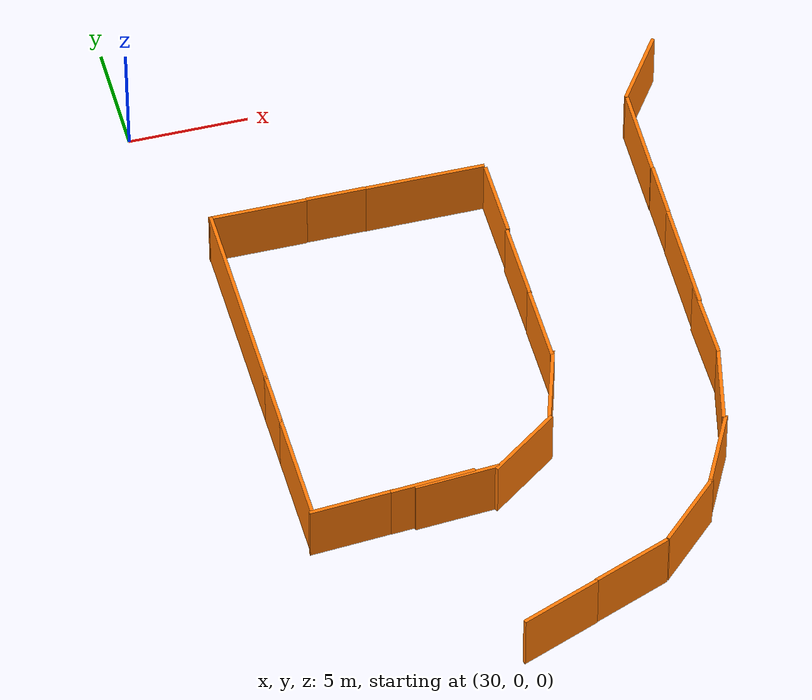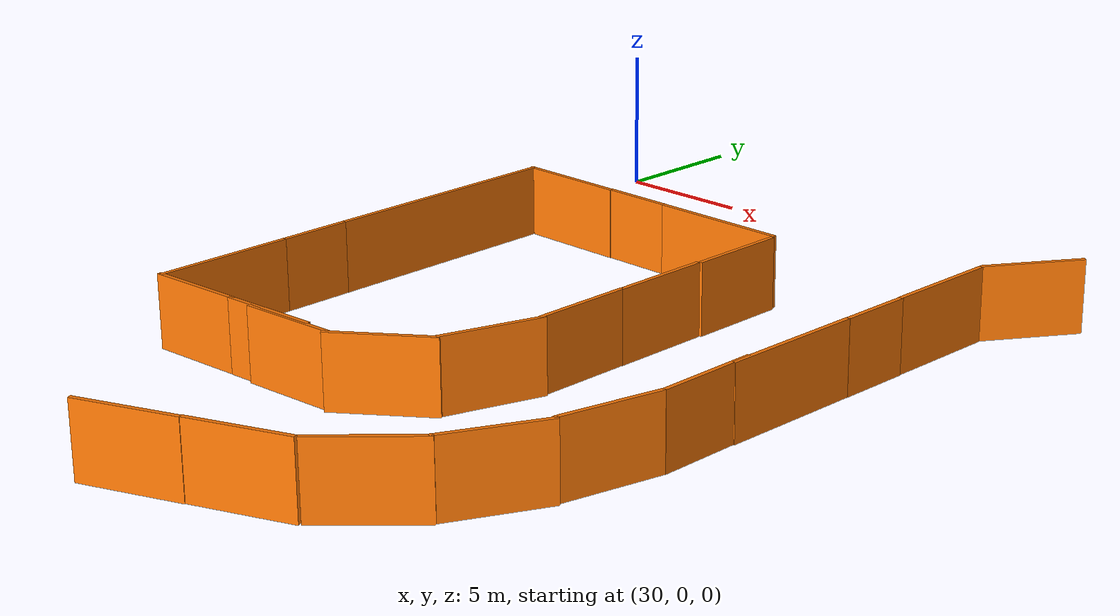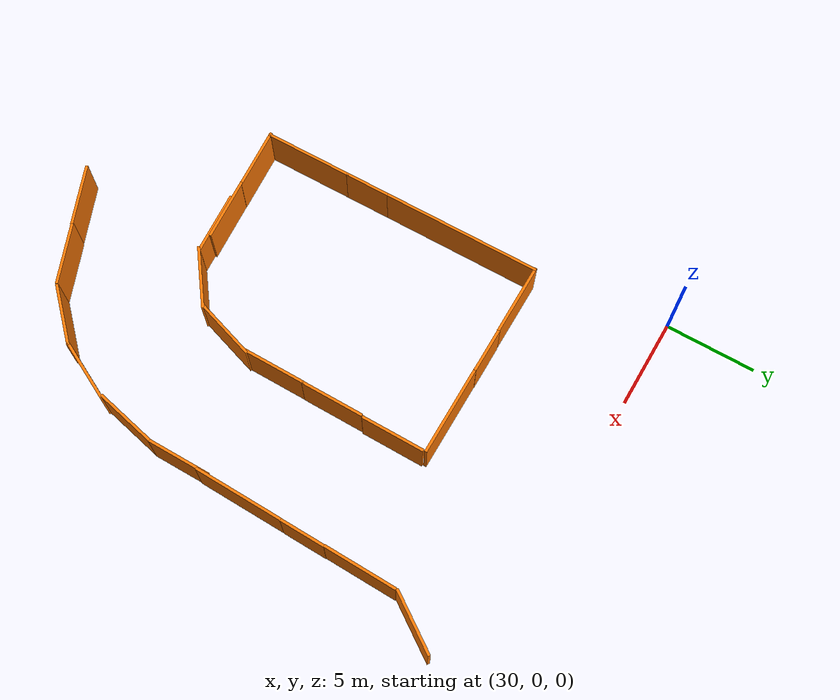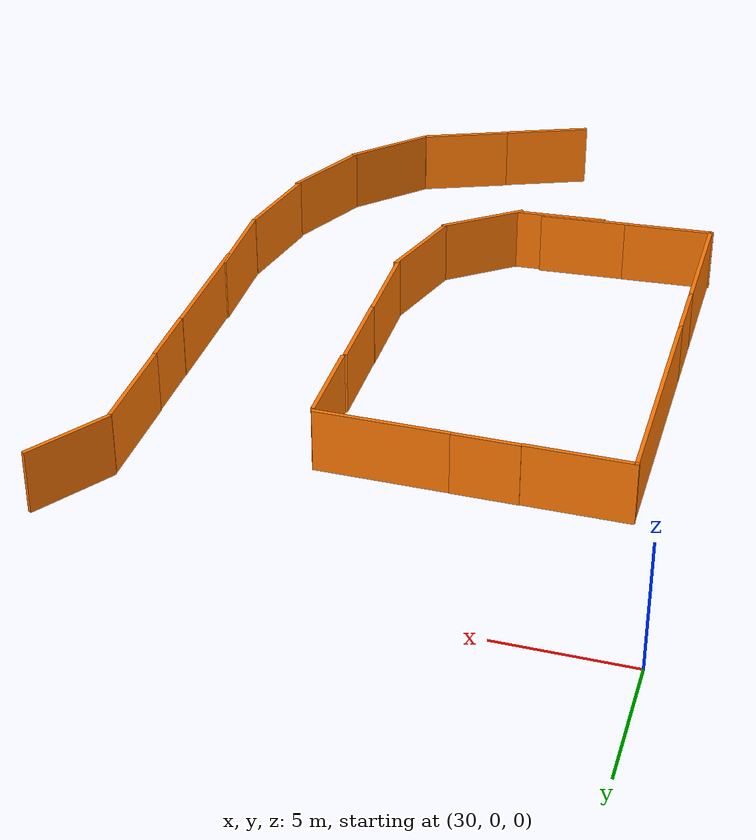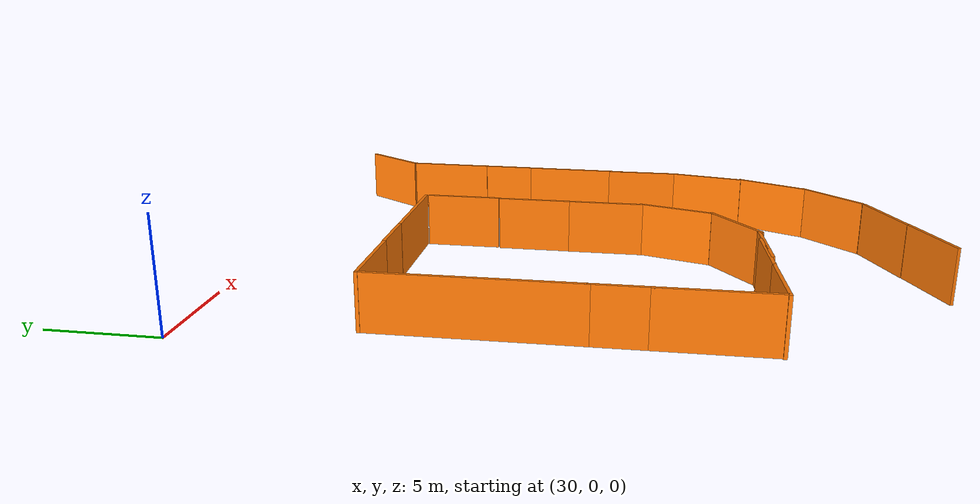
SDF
<sdf version="1.7">
 <world name="cimen_zemin_dunyasi">
  <model name="barrier2_0">
   <pose>41.1833 -28.8913 0 0 -0 0.378391</pose>
   <link name="Wall_3">
    <collision name="Wall_3_Collision">
     <geometry><box><size>3.5 0.15 2.5</size></box></geometry>
     <pose>0 0 1.25 0 -0 0</pose>
    </collision>
    <visual name="Wall_3_Visual">
     <pose>0 0 1.25 0 -0 0</pose>
     <geometry><box><size>3.5 0.15 2.5</size></box></geometry>
     <material>
      <script><uri>file://media/materials/scripts/gazebo.material</uri><name>Gazebo/Grey</name></script>
      <ambient>0.996078 0.47451 0.0196078 1</ambient>
     </material>
     <meta><layer>0</layer></meta>
    </visual>
    <pose>-1.55327 -0.720218 0 0 -0 0</pose>
   </link>
   <static>1</static>
  </model>
  <model name="barrier2_0_clone">
   <pose>44.373 -27.5976 0 0 -0 0.378391</pose>
   <link name="Wall_3">
    <collision name="Wall_3_Collision">
     <geometry><box><size>3.5 0.15 2.5</size></box></geometry>
     <pose>0 0 1.25 0 -0 0</pose>
    </collision>
    <visual name="Wall_3_Visual">
     <pose>0 0 1.25 0 -0 0</pose>
     <geometry><box><size>3.5 0.15 2.5</size></box></geometry>
     <material>
      <script><uri>file://media/materials/scripts/gazebo.material</uri><name>Gazebo/Grey</name></script>
      <ambient>0.996078 0.47451 0.0196078 1</ambient>
     </material>
     <meta><layer>0</layer></meta>
    </visual>
    <pose>-1.55327 -0.720218 0 0 -0 0</pose>
   </link>
   <static>1</static>
  </model>
  <model name="barrier2_0_clone_clone">
   <pose>46.6916 -25.3254 0 0 -0 0.779976</pose>
   <link name="Wall_3">
    <collision name="Wall_3_Collision">
     <geometry><box><size>3.5 0.15 2.5</size></box></geometry>
     <pose>0 0 1.25 0 -0 0</pose>
    </collision>
    <visual name="Wall_3_Visual">
     <pose>0 0 1.25 0 -0 0</pose>
     <geometry><box><size>3.5 0.15 2.5</size></box></geometry>
     <material>
      <script><uri>file://media/materials/scripts/gazebo.material</uri><name>Gazebo/Grey</name></script>
      <ambient>0.996078 0.47451 0.0196078 1</ambient>
     </material>
     <meta><layer>0</layer></meta>
    </visual>
    <pose>-1.55327 -0.720218 0 0 -0 0</pose>
   </link>
   <static>1</static>
  </model>
  <model name="barrier2_0_clone_clone_0">
   <pose>48.0691 -22.5134 0 0 -0 1.10597</pose>
   <link name="Wall_3">
    <collision name="Wall_3_Collision">
     <geometry><box><size>3.5 0.15 2.5</size></box></geometry>
     <pose>0 0 1.25 0 -0 0</pose>
    </collision>
    <visual name="Wall_3_Visual">
     <pose>0 0 1.25 0 -0 0</pose>
     <geometry><box><size>3.5 0.15 2.5</size></box></geometry>
     <material>
      <script><uri>file://media/materials/scripts/gazebo.material</uri><name>Gazebo/Grey</name></script>
      <ambient>0.996078 0.47451 0.0196078 1</ambient>
     </material>
     <meta><layer>0</layer></meta>
    </visual>
    <pose>-1.55327 -0.720218 0 0 -0 0</pose>
   </link>
   <static>1</static>
  </model>
  <model name="barrier2_0_clone_clone_0_clone">
   <pose>48.7188 -19.3432 0 0 -0 1.3497</pose>
   <link name="Wall_3">
    <collision name="Wall_3_Collision">
     <geometry><box><size>3.5 0.15 2.5</size></box></geometry>
     <pose>0 0 1.25 0 -0 0</pose>
    </collision>
    <visual name="Wall_3_Visual">
     <pose>0 0 1.25 0 -0 0</pose>
     <geometry><box><size>3.5 0.15 2.5</size></box></geometry>
     <material>
      <script><uri>file://media/materials/scripts/gazebo.material</uri><name>Gazebo/Grey</name></script>
      <ambient>0.996078 0.47451 0.0196078 1</ambient>
     </material>
     <meta><layer>0</layer></meta>
    </visual>
    <pose>-1.55327 -0.720218 0 0 -0 0</pose>
   </link>
   <static>1</static>
  </model>
  <model name="barrier2_0_clone_clone_0_clone_clone">
   <pose>48.7558 -16.0392 0 0 -0 1.56919</pose>
   <link name="Wall_3">
    <collision name="Wall_3_Collision">
     <geometry><box><size>3.5 0.15 2.5</size></box></geometry>
     <pose>0 0 1.25 0 -0 0</pose>
    </collision>
    <visual name="Wall_3_Visual">
     <pose>0 0 1.25 0 -0 0</pose>
     <geometry><box><size>3.5 0.15 2.5</size></box></geometry>
     <material>
      <script><uri>file://media/materials/scripts/gazebo.material</uri><name>Gazebo/Grey</name></script>
      <ambient>0.996078 0.47451 0.0196078 1</ambient>
     </material>
     <meta><layer>0</layer></meta>
    </visual>
    <pose>-1.55327 -0.720218 0 0 -0 0</pose>
   </link>
   <static>1</static>
  </model>
  <model name="barrier2_1">
   <pose>50.9881 -1.89876 0 0 -0 0.971231</pose>
   <link name="Wall_3">
    <collision name="Wall_3_Collision">
     <geometry><box><size>3.5 0.15 2.5</size></box></geometry>
     <pose>0 0 1.25 0 -0 0</pose>
    </collision>
    <visual name="Wall_3_Visual">
     <pose>0 0 1.25 0 -0 0</pose>
     <geometry><box><size>3.5 0.15 2.5</size></box></geometry>
     <material>
      <script><uri>file://media/materials/scripts/gazebo.material</uri><name>Gazebo/Grey</name></script>
      <ambient>0.996078 0.47451 0.0196078 1</ambient>
     </material>
     <meta><layer>0</layer></meta>
    </visual>
    <pose>-1.55327 -0.720218 0 0 -0 0</pose>
   </link>
   <static>1</static>
  </model>
  <model name="barier3_clone_clone_clone_clone_0_clone_clone_clone_0">
   <link name="Wall_5">
    <pose>-1.25417 -2.31114 0 0 -0 0</pose>
    <inertial>
     <inertia><ixx>0</ixx><ixy>0</ixy><ixz>0</ixz><iyy>0</iyy><iyz>0</iyz><izz>0</izz></inertia>
     <mass>0</mass>
    </inertial>
    <visual name="Wall_5_Visual">
     <pose>0 0 1.25 0 -0 0</pose>
     <geometry><box><size>4.04839 0.15 2.5</size></box></geometry>
     <material>
      <script><uri>file://media/materials/scripts/gazebo.material</uri><name>Gazebo/Grey</name></script>
      <ambient>0.996078 0.47451 0.0196078 1</ambient>
      <shader type="pixel"/>
     </material>
     <meta><layer>0</layer></meta>
    </visual>
    <collision name="Wall_5_Collision">
     <pose>0 0 1.25 0 -0 0</pose>
     <geometry><box><size>4.04839 0.15 2.5</size></box></geometry>
     <surface>
      <friction>
       <ode><mu>1</mu><mu2>1</mu2><fdir1>0 0 0</fdir1><slip1>0</slip1><slip2>0</slip2></ode>
       <torsional>
        <coefficient>1</coefficient>
        <patch_radius>0</patch_radius>
        <surface_radius>0</surface_radius>
        <use_patch_radius>1</use_patch_radius>
        <ode><slip>0</slip></ode>
       </torsional>
      </friction>
      <bounce><restitution_coefficient>0</restitution_coefficient><threshold>1e+06</threshold></bounce>
      <contact>
       <collide_without_contact>0</collide_without_contact>
       <collide_without_contact_bitmask>1</collide_without_contact_bitmask>
       <collide_bitmask>1</collide_bitmask>
       <ode>
        <soft_cfm>0</soft_cfm>
        <soft_erp>0.2</soft_erp>
        <kp>1e+13</kp>
        <kd>1</kd>
        <max_vel>0.01</max_vel>
        <min_depth>0</min_depth>
       </ode>
       <bullet>
        <split_impulse>1</split_impulse>
        <split_impulse_penetration_threshold>-0.01</split_impulse_penetration_threshold>
        <soft_cfm>0</soft_cfm>
        <soft_erp>0.2</soft_erp>
        <kp>1e+13</kp>
        <kd>1</kd>
       </bullet>
      </contact>
     </surface>
    </collision>
   </link>
   <link name="Wall_7">
    <pose>2 -2.29057 0 0 -0 0</pose>
    <visual name="Wall_7_Visual">
     <pose>0 0 1.25 0 -0 0</pose>
     <geometry><box><size>2.5 0.15 2.5</size></box></geometry>
     <material>
      <script><uri>file://media/materials/scripts/gazebo.material</uri><name>Gazebo/Grey</name></script>
      <ambient>0.996078 0.47451 0.0196078 1</ambient>
      <shader type="pixel"/>
     </material>
     <meta><layer>0</layer></meta>
    </visual>
    <collision name="Wall_7_Collision">
     <pose>0 0 1.25 0 -0 0</pose>
     <geometry><box><size>2.5 0.15 2.5</size></box></geometry>
     <surface>
      <friction>
       <ode><mu>1</mu><mu2>1</mu2><fdir1>0 0 0</fdir1><slip1>0</slip1><slip2>0</slip2></ode>
       <torsional>
        <coefficient>1</coefficient>
        <patch_radius>0</patch_radius>
        <surface_radius>0</surface_radius>
        <use_patch_radius>1</use_patch_radius>
        <ode><slip>0</slip></ode>
       </torsional>
      </friction>
      <bounce><restitution_coefficient>0</restitution_coefficient><threshold>1e+06</threshold></bounce>
      <contact>
       <collide_without_contact>0</collide_without_contact>
       <collide_without_contact_bitmask>1</collide_without_contact_bitmask>
       <collide_bitmask>1</collide_bitmask>
       <ode>
        <soft_cfm>0</soft_cfm>
        <soft_erp>0.2</soft_erp>
        <kp>1e+13</kp>
        <kd>1</kd>
        <max_vel>0.01</max_vel>
        <min_depth>0</min_depth>
       </ode>
       <bullet>
        <split_impulse>1</split_impulse>
        <split_impulse_penetration_threshold>-0.01</split_impulse_penetration_threshold>
        <soft_cfm>0</soft_cfm>
        <soft_erp>0.2</soft_erp>
        <kp>1e+13</kp>
        <kd>1</kd>
       </bullet>
      </contact>
     </surface>
    </collision>
   </link>
   <link name="Wall_9">
    <pose>5.71906 -2.30051 0 0 -0 0</pose>
    <inertial>
     <inertia><ixx>0</ixx><ixy>0</ixy><ixz>0</ixz><iyy>0</iyy><iyz>0</iyz><izz>0</izz></inertia>
     <mass>0</mass>
    </inertial>
    <visual name="Wall_9_Visual">
     <pose>0 0 1.25 0 -0 0</pose>
     <geometry><box><size>4.97607 0.15 2.5</size></box></geometry>
     <material>
      <script><uri>file://media/materials/scripts/gazebo.material</uri><name>Gazebo/Grey</name></script>
      <ambient>0.996078 0.47451 0.0196078 1</ambient>
      <shader type="pixel"/>
     </material>
     <meta><layer>0</layer></meta>
    </visual>
    <collision name="Wall_9_Collision">
     <pose>0 0 1.25 0 -0 0</pose>
     <geometry><box><size>4.97607 0.15 2.5</size></box></geometry>
     <surface>
      <friction>
       <ode><mu>1</mu><mu2>1</mu2><fdir1>0 0 0</fdir1><slip1>0</slip1><slip2>0</slip2></ode>
       <torsional>
        <coefficient>1</coefficient>
        <patch_radius>0</patch_radius>
        <surface_radius>0</surface_radius>
        <use_patch_radius>1</use_patch_radius>
        <ode><slip>0</slip></ode>
       </torsional>
      </friction>
      <bounce><restitution_coefficient>0</restitution_coefficient><threshold>1e+06</threshold></bounce>
      <contact>
       <collide_without_contact>0</collide_without_contact>
       <collide_without_contact_bitmask>1</collide_without_contact_bitmask>
       <collide_bitmask>1</collide_bitmask>
       <ode>
        <soft_cfm>0</soft_cfm>
        <soft_erp>0.2</soft_erp>
        <kp>1e+13</kp>
        <kd>1</kd>
        <max_vel>0.01</max_vel>
        <min_depth>0</min_depth>
       </ode>
       <bullet>
        <split_impulse>1</split_impulse>
        <split_impulse_penetration_threshold>-0.01</split_impulse_penetration_threshold>
        <soft_cfm>0</soft_cfm>
        <soft_erp>0.2</soft_erp>
        <kp>1e+13</kp>
        <kd>1</kd>
       </bullet>
      </contact>
     </surface>
    </collision>
   </link>
   <static>1</static>
   <pose>51.992 -8.39623 0 0 0 -1.59283</pose>
  </model>
  <model name="barier3_clone_clone_1_clone">
   <pose>34.088 -15.2862 0 0 0 -1.56341</pose>
   <link name="Wall_5">
    <collision name="Wall_5_Collision">
     <geometry><box><size>9 0.15 2.5</size></box></geometry>
     <pose>0 0 1.25 0 -0 0</pose>
    </collision>
    <visual name="Wall_5_Visual">
     <pose>0 0 1.25 0 -0 0</pose>
     <geometry><box><size>9 0.15 2.5</size></box></geometry>
     <material>
      <script><uri>file://media/materials/scripts/gazebo.material</uri><name>Gazebo/Grey</name></script>
      <ambient>0.996078 0.47451 0.0196078 1</ambient>
     </material>
     <meta><layer>0</layer></meta>
    </visual>
    <pose>-3.6 -2.29057 0 0 -0 0</pose>
   </link>
   <link name="Wall_7">
    <collision name="Wall_7_Collision">
     <geometry><box><size>2.5 0.15 2.5</size></box></geometry>
     <pose>0 0 1.25 0 -0 0</pose>
    </collision>
    <visual name="Wall_7_Visual">
     <pose>0 0 1.25 0 -0 0</pose>
     <geometry><box><size>2.5 0.15 2.5</size></box></geometry>
     <material>
      <script><uri>file://media/materials/scripts/gazebo.material</uri><name>Gazebo/Grey</name></script>
      <ambient>0.996078 0.47451 0.0196078 1</ambient>
     </material>
     <meta><layer>0</layer></meta>
    </visual>
    <pose>2 -2.29057 0 0 -0 0</pose>
   </link>
   <link name="Wall_9">
    <collision name="Wall_9_Collision">
     <geometry><box><size>5 0.15 2.5</size></box></geometry>
     <pose>0 0 1.25 0 -0 0</pose>
    </collision>
    <visual name="Wall_9_Visual">
     <pose>0 0 1.25 0 -0 0</pose>
     <geometry><box><size>5 0.15 2.5</size></box></geometry>
     <material>
      <script><uri>file://media/materials/scripts/gazebo.material</uri><name>Gazebo/Grey</name></script>
      <ambient>0.996078 0.47451 0.0196078 1</ambient>
     </material>
     <meta><layer>0</layer></meta>
    </visual>
    <pose>5.6 -2.29057 0 0 -0 0</pose>
   </link>
   <static>1</static>
  </model>
  <model name="barier3_clone_clone_clone_clone_0_clone_clone_clone_clone_1">
   <link name="Wall_5">
    <pose>-1.25417 -2.31114 0 0 -0 0</pose>
    <inertial>
     <inertia><ixx>0</ixx><ixy>0</ixy><ixz>0</ixz><iyy>0</iyy><iyz>0</iyz><izz>0</izz></inertia>
     <mass>0</mass>
    </inertial>
    <visual name="Wall_5_Visual">
     <pose>0 0 1.25 0 -0 0</pose>
     <geometry><box><size>4.04839 0.15 2.5</size></box></geometry>
     <material>
      <script><uri>file://media/materials/scripts/gazebo.material</uri><name>Gazebo/Grey</name></script>
      <ambient>0.996078 0.47451 0.0196078 1</ambient>
      <shader type="pixel"/>
     </material>
     <meta><layer>0</layer></meta>
    </visual>
    <collision name="Wall_5_Collision">
     <pose>0 0 1.25 0 -0 0</pose>
     <geometry><box><size>4.04839 0.15 2.5</size></box></geometry>
     <surface>
      <friction>
       <ode><mu>1</mu><mu2>1</mu2><fdir1>0 0 0</fdir1><slip1>0</slip1><slip2>0</slip2></ode>
       <torsional>
        <coefficient>1</coefficient>
        <patch_radius>0</patch_radius>
        <surface_radius>0</surface_radius>
        <use_patch_radius>1</use_patch_radius>
        <ode><slip>0</slip></ode>
       </torsional>
      </friction>
      <bounce><restitution_coefficient>0</restitution_coefficient><threshold>1e+06</threshold></bounce>
      <contact>
       <collide_without_contact>0</collide_without_contact>
       <collide_without_contact_bitmask>1</collide_without_contact_bitmask>
       <collide_bitmask>1</collide_bitmask>
       <ode>
        <soft_cfm>0</soft_cfm>
        <soft_erp>0.2</soft_erp>
        <kp>1e+13</kp>
        <kd>1</kd>
        <max_vel>0.01</max_vel>
        <min_depth>0</min_depth>
       </ode>
       <bullet>
        <split_impulse>1</split_impulse>
        <split_impulse_penetration_threshold>-0.01</split_impulse_penetration_threshold>
        <soft_cfm>0</soft_cfm>
        <soft_erp>0.2</soft_erp>
        <kp>1e+13</kp>
        <kd>1</kd>
       </bullet>
      </contact>
     </surface>
    </collision>
   </link>
   <link name="Wall_7">
    <pose>2 -2.29057 0 0 -0 0</pose>
    <visual name="Wall_7_Visual">
     <pose>0 0 1.25 0 -0 0</pose>
     <geometry><box><size>2.5 0.15 2.5</size></box></geometry>
     <material>
      <script><uri>file://media/materials/scripts/gazebo.material</uri><name>Gazebo/Grey</name></script>
      <ambient>0.996078 0.47451 0.0196078 1</ambient>
      <shader type="pixel"/>
     </material>
     <meta><layer>0</layer></meta>
    </visual>
    <collision name="Wall_7_Collision">
     <pose>0 0 1.25 0 -0 0</pose>
     <geometry><box><size>2.5 0.15 2.5</size></box></geometry>
     <surface>
      <friction>
       <ode><mu>1</mu><mu2>1</mu2><fdir1>0 0 0</fdir1><slip1>0</slip1><slip2>0</slip2></ode>
       <torsional>
        <coefficient>1</coefficient>
        <patch_radius>0</patch_radius>
        <surface_radius>0</surface_radius>
        <use_patch_radius>1</use_patch_radius>
        <ode><slip>0</slip></ode>
       </torsional>
      </friction>
      <bounce><restitution_coefficient>0</restitution_coefficient><threshold>1e+06</threshold></bounce>
      <contact>
       <collide_without_contact>0</collide_without_contact>
       <collide_without_contact_bitmask>1</collide_without_contact_bitmask>
       <collide_bitmask>1</collide_bitmask>
       <ode>
        <soft_cfm>0</soft_cfm>
        <soft_erp>0.2</soft_erp>
        <kp>1e+13</kp>
        <kd>1</kd>
        <max_vel>0.01</max_vel>
        <min_depth>0</min_depth>
       </ode>
       <bullet>
        <split_impulse>1</split_impulse>
        <split_impulse_penetration_threshold>-0.01</split_impulse_penetration_threshold>
        <soft_cfm>0</soft_cfm>
        <soft_erp>0.2</soft_erp>
        <kp>1e+13</kp>
        <kd>1</kd>
       </bullet>
      </contact>
     </surface>
    </collision>
   </link>
   <link name="Wall_9">
    <pose>5.71906 -2.30051 0 0 -0 0</pose>
    <inertial>
     <inertia><ixx>0</ixx><ixy>0</ixy><ixz>0</ixz><iyy>0</iyy><iyz>0</iyz><izz>0</izz></inertia>
     <mass>0</mass>
    </inertial>
    <visual name="Wall_9_Visual">
     <pose>0 0 1.25 0 -0 0</pose>
     <geometry><box><size>4.97607 0.15 2.5</size></box></geometry>
     <material>
      <script><uri>file://media/materials/scripts/gazebo.material</uri><name>Gazebo/Grey</name></script>
      <ambient>0.996078 0.47451 0.0196078 1</ambient>
      <shader type="pixel"/>
     </material>
     <meta><layer>0</layer></meta>
    </visual>
    <collision name="Wall_9_Collision">
     <pose>0 0 1.25 0 -0 0</pose>
     <geometry><box><size>4.97607 0.15 2.5</size></box></geometry>
     <surface>
      <friction>
       <ode><mu>1</mu><mu2>1</mu2><fdir1>0 0 0</fdir1><slip1>0</slip1><slip2>0</slip2></ode>
       <torsional>
        <coefficient>1</coefficient>
        <patch_radius>0</patch_radius>
        <surface_radius>0</surface_radius>
        <use_patch_radius>1</use_patch_radius>
        <ode><slip>0</slip></ode>
       </torsional>
      </friction>
      <bounce><restitution_coefficient>0</restitution_coefficient><threshold>1e+06</threshold></bounce>
      <contact>
       <collide_without_contact>0</collide_without_contact>
       <collide_without_contact_bitmask>1</collide_without_contact_bitmask>
       <collide_bitmask>1</collide_bitmask>
       <ode>
        <soft_cfm>0</soft_cfm>
        <soft_erp>0.2</soft_erp>
        <kp>1e+13</kp>
        <kd>1</kd>
        <max_vel>0.01</max_vel>
        <min_depth>0</min_depth>
       </ode>
       <bullet>
        <split_impulse>1</split_impulse>
        <split_impulse_penetration_threshold>-0.01</split_impulse_penetration_threshold>
        <soft_cfm>0</soft_cfm>
        <soft_erp>0.2</soft_erp>
        <kp>1e+13</kp>
        <kd>1</kd>
       </bullet>
      </contact>
     </surface>
    </collision>
   </link>
   <static>1</static>
   <pose>34.9291 -4.94299 0 0 -0 0</pose>
  </model>
  <model name="barrier2_0_clone_clone_0_clone_clone_clone">
   <pose>42.4211 -7.56395 0 0 -0 1.56919</pose>
   <link name="Wall_3">
    <collision name="Wall_3_Collision">
     <geometry><box><size>3.5 0.15 2.5</size></box></geometry>
     <pose>0 0 1.25 0 -0 0</pose>
    </collision>
    <visual name="Wall_3_Visual">
     <pose>0 0 1.25 0 -0 0</pose>
     <geometry><box><size>3.5 0.15 2.5</size></box></geometry>
     <material>
      <script><uri>file://media/materials/scripts/gazebo.material</uri><name>Gazebo/Grey</name></script>
      <ambient>0.996078 0.47451 0.0196078 1</ambient>
     </material>
     <meta><layer>0</layer></meta>
    </visual>
    <pose>-1.55327 -0.720218 0 0 -0 0</pose>
   </link>
   <static>1</static>
  </model>
  <model name="barrier2_0_clone_clone_0_clone_clone_clone_clone">
   <pose>42.3577 -11.112 0 0 -0 1.56919</pose>
   <link name="Wall_3">
    <collision name="Wall_3_Collision">
     <geometry><box><size>3.5 0.15 2.5</size></box></geometry>
     <pose>0 0 1.25 0 -0 0</pose>
    </collision>
    <visual name="Wall_3_Visual">
     <pose>0 0 1.25 0 -0 0</pose>
     <geometry><box><size>3.5 0.15 2.5</size></box></geometry>
     <material>
      <script><uri>file://media/materials/scripts/gazebo.material</uri><name>Gazebo/Grey</name></script>
      <ambient>0.996078 0.47451 0.0196078 1</ambient>
     </material>
     <meta><layer>0</layer></meta>
    </visual>
    <pose>-1.55327 -0.720218 0 0 -0 0</pose>
   </link>
   <static>1</static>
  </model>
  <model name="barrier2_0_clone_clone_0_clone_clone_clone_clone_clone">
   <pose>42.3379 -14.5116 0 0 -0 1.56919</pose>
   <link name="Wall_3">
    <collision name="Wall_3_Collision">
     <geometry><box><size>3.5 0.15 2.5</size></box></geometry>
     <pose>0 0 1.25 0 -0 0</pose>
    </collision>
    <visual name="Wall_3_Visual">
     <pose>0 0 1.25 0 -0 0</pose>
     <geometry><box><size>3.5 0.15 2.5</size></box></geometry>
     <material>
      <script><uri>file://media/materials/scripts/gazebo.material</uri><name>Gazebo/Grey</name></script>
      <ambient>0.996078 0.47451 0.0196078 1</ambient>
     </material>
     <meta><layer>0</layer></meta>
    </visual>
    <pose>-1.55327 -0.720218 0 0 -0 0</pose>
   </link>
   <static>1</static>
  </model>
  <model name="barrier2_0_clone_clone_0_clone_clone_clone_clone_clone_clone">
   <pose>42.3858 -17.6249 0 0 -0 1.25875</pose>
   <link name="Wall_3">
    <collision name="Wall_3_Collision">
     <geometry><box><size>3.5 0.15 2.5</size></box></geometry>
     <pose>0 0 1.25 0 -0 0</pose>
    </collision>
    <visual name="Wall_3_Visual">
     <pose>0 0 1.25 0 -0 0</pose>
     <geometry><box><size>3.5 0.15 2.5</size></box></geometry>
     <material>
      <script><uri>file://media/materials/scripts/gazebo.material</uri><name>Gazebo/Grey</name></script>
      <ambient>0.996078 0.47451 0.0196078 1</ambient>
     </material>
     <meta><layer>0</layer></meta>
    </visual>
    <pose>-1.55327 -0.720218 0 0 -0 0</pose>
   </link>
   <static>1</static>
  </model>
  <model name="barrier2_0_clone_clone_0_clone_clone_clone_clone_clone_clone_clone">
   <pose>41.5821 -20.4836 0 0 -0 0.639315</pose>
   <link name="Wall_3">
    <collision name="Wall_3_Collision">
     <geometry><box><size>3.5 0.15 2.5</size></box></geometry>
     <pose>0 0 1.25 0 -0 0</pose>
    </collision>
    <visual name="Wall_3_Visual">
     <pose>0 0 1.25 0 -0 0</pose>
     <geometry><box><size>3.5 0.15 2.5</size></box></geometry>
     <material>
      <script><uri>file://media/materials/scripts/gazebo.material</uri><name>Gazebo/Grey</name></script>
      <ambient>0.996078 0.47451 0.0196078 1</ambient>
     </material>
     <meta><layer>0</layer></meta>
    </visual>
    <pose>-1.55327 -0.720218 0 0 -0 0</pose>
   </link>
   <static>1</static>
  </model>
  <model name="barrier2_0_clone_clone_0_clone_clone_clone_clone_clone_clone_clone_clone">
   <pose>34.9713 -22.3918 0 0 -0 0.074264</pose>
   <link name="Wall_3">
    <collision name="Wall_3_Collision">
     <geometry><box><size>3.5 0.15 2.5</size></box></geometry>
     <pose>0 0 1.25 0 -0 0</pose>
    </collision>
    <visual name="Wall_3_Visual">
     <pose>0 0 1.25 0 -0 0</pose>
     <geometry><box><size>3.5 0.15 2.5</size></box></geometry>
     <material>
      <script><uri>file://media/materials/scripts/gazebo.material</uri><name>Gazebo/Grey</name></script>
      <ambient>0.996078 0.47451 0.0196078 1</ambient>
     </material>
     <meta><layer>0</layer></meta>
    </visual>
    <pose>-1.55327 -0.720218 0 0 -0 0</pose>
   </link>
   <static>1</static>
  </model>
  <model name="barrier2_0_clone_clone_0_clone_clone_clone_clone_clone_clone_clone_clone_clone">
   <pose>38.3002 -22.1559 0 0 -0 0.074264</pose>
   <link name="Wall_3">
    <collision name="Wall_3_Collision">
     <geometry><box><size>3.5 0.15 2.5</size></box></geometry>
     <pose>0 0 1.25 0 -0 0</pose>
    </collision>
    <visual name="Wall_3_Visual">
     <pose>0 0 1.25 0 -0 0</pose>
     <geometry><box><size>3.5 0.15 2.5</size></box></geometry>
     <material>
      <script><uri>file://media/materials/scripts/gazebo.material</uri><name>Gazebo/Grey</name></script>
      <ambient>0.996078 0.47451 0.0196078 1</ambient>
     </material>
     <meta><layer>0</layer></meta>
    </visual>
    <pose>-1.55327 -0.720218 0 0 -0 0</pose>
   </link>
   <static>1</static>
  </model>
  <model name="barrier2_0_clone_clone_0_clone_clone_clone_clone_clone_clone_clone_clone_clone_clone">
   <pose>39.2836 -22.1834 0 0 -0 0.074264</pose>
   <link name="Wall_3">
    <collision name="Wall_3_Collision">
     <geometry><box><size>3.5 0.15 2.5</size></box></geometry>
     <pose>0 0 1.25 0 -0 0</pose>
    </collision>
    <visual name="Wall_3_Visual">
     <pose>0 0 1.25 0 -0 0</pose>
     <geometry><box><size>3.5 0.15 2.5</size></box></geometry>
     <material>
      <script><uri>file://media/materials/scripts/gazebo.material</uri><name>Gazebo/Grey</name></script>
      <ambient>0.996078 0.47451 0.0196078 1</ambient>
     </material>
     <meta><layer>0</layer></meta>
    </visual>
    <pose>-1.55327 -0.720218 0 0 -0 0</pose>
   </link>
   <static>1</static>
  </model>
 </world>
</sdf>
